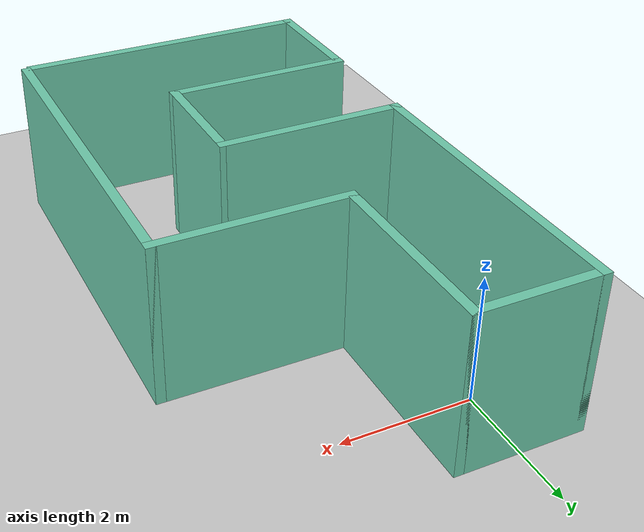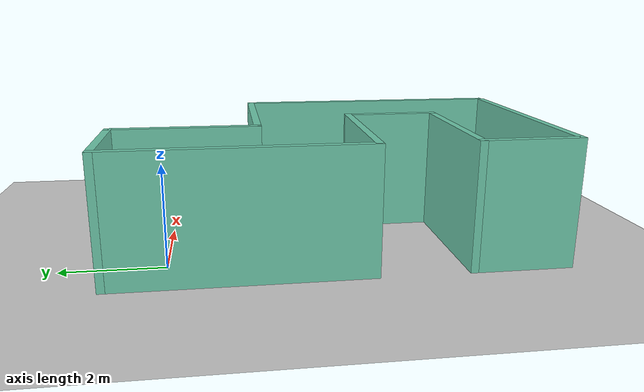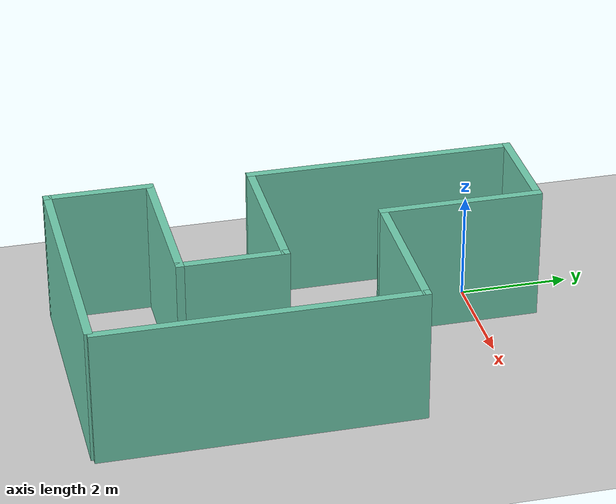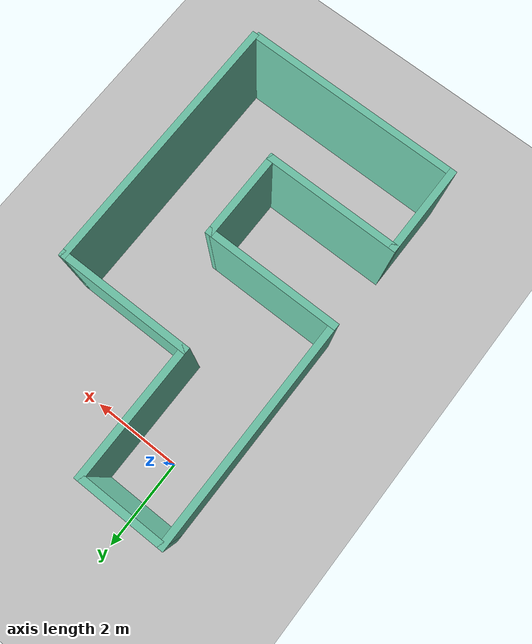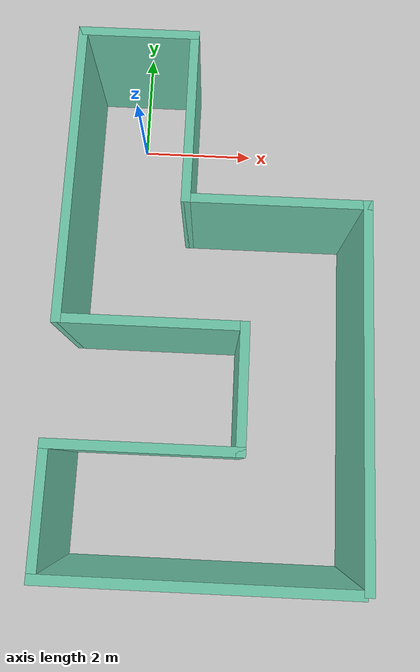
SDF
<sdf version="1.6">
 <world name="default">
  <light name="sun" type="directional">
   <pose>0 0 10 0 -0 0</pose>
   <diffuse>0.8 0.8 0.8 1</diffuse>
   <specular>0.2 0.2 0.2 1</specular>
   <attenuation>
    <range>1000</range>
    <constant>0.9</constant>
    <linear>0.01</linear>
    <quadratic>0.001</quadratic>
   </attenuation>
   <direction>-0.5 0.1 -0.9</direction>
  </light>
  <model name="ground_plane">
   <static>1</static>
   <link name="link">
    <collision name="collision">
     <geometry><plane><normal>0 0 1</normal><size>100 100</size></plane></geometry>
     <surface>
      <contact><collide_bitmask>65535</collide_bitmask></contact>
      <friction><ode><mu>100</mu><mu2>50</mu2></ode></friction>
     </surface>
    </collision>
    <visual name="visual">
     <cast_shadows>0</cast_shadows>
     <geometry><plane><normal>0 0 1</normal><size>100 100</size></plane></geometry>
     <material>
      <script><uri>file://media/materials/scripts/gazebo.material</uri><name>Gazebo/Grey</name></script>
     </material>
    </visual>
   </link>
  </model>
  <gravity>0 0 -9.8</gravity>
  <magnetic_field>6e-06 2.3e-05 -4.2e-05</magnetic_field>
  <atmosphere type="adiabatic"/>
  <physics name="default_physics" default="0" type="ode">
   <max_step_size>0.001</max_step_size>
   <real_time_factor>1</real_time_factor>
   <real_time_update_rate>1000</real_time_update_rate>
  </physics>
  <scene><ambient>0.4 0.4 0.4 1</ambient><background>0.7 0.7 0.7 1</background><shadows>1</shadows></scene>
  <spherical_coordinates>
   <surface_model>EARTH_WGS84</surface_model>
   <latitude_deg>0</latitude_deg>
   <longitude_deg>0</longitude_deg>
   <elevation>0</elevation>
   <heading_deg>0</heading_deg>
  </spherical_coordinates>
  <model name="turtlebot_world">
   <pose>1.42693 -3.22283 0 0 -0 0</pose>
   <link name="Wall_14">
    <collision name="Wall_14_Collision">
     <geometry><box><size>5 0.15 2.5</size></box></geometry>
     <pose>0 0 1.25 0 -0 0</pose>
    </collision>
    <visual name="Wall_14_Visual">
     <pose>0 0 1.25 0 -0 0</pose>
     <geometry><box><size>5 0.15 2.5</size></box></geometry>
     <material>
      <script><uri>file://media/materials/scripts/gazebo.material</uri><name>Gazebo/Grey</name></script>
      <ambient>0.435294 0.796078 0.67451 1</ambient>
     </material>
     <meta><layer>0</layer></meta>
    </visual>
    <pose>-2.35 1.85023 0 0 0 -1.5708</pose>
   </link>
   <link name="Wall_16">
    <collision name="Wall_16_Collision">
     <geometry><box><size>2 0.15 2.5</size></box></geometry>
     <pose>0 0 1.25 0 -0 0</pose>
    </collision>
    <visual name="Wall_16_Visual">
     <pose>0 0 1.25 0 -0 0</pose>
     <geometry><box><size>2 0.15 2.5</size></box></geometry>
     <material>
      <script><uri>file://media/materials/scripts/gazebo.material</uri><name>Gazebo/Grey</name></script>
      <ambient>0.435294 0.796078 0.67451 1</ambient>
     </material>
     <meta><layer>0</layer></meta>
    </visual>
    <pose>-1.425 4.27523 0 0 -0 0</pose>
   </link>
   <link name="Wall_18">
    <collision name="Wall_18_Collision">
     <geometry><box><size>3 0.15 2.5</size></box></geometry>
     <pose>0 0 1.25 0 -0 0</pose>
    </collision>
    <visual name="Wall_18_Visual">
     <pose>0 0 1.25 0 -0 0</pose>
     <geometry><box><size>3 0.15 2.5</size></box></geometry>
     <material>
      <script><uri>file://media/materials/scripts/gazebo.material</uri><name>Gazebo/Grey</name></script>
      <ambient>0.435294 0.796078 0.67451 1</ambient>
     </material>
     <meta><layer>0</layer></meta>
    </visual>
    <pose>-0.5 2.85023 0 0 0 -1.5708</pose>
   </link>
   <link name="Wall_22">
    <collision name="Wall_22_Collision">
     <geometry><box><size>3 0.15 2.5</size></box></geometry>
     <pose>0 0 1.25 0 -0 0</pose>
    </collision>
    <visual name="Wall_22_Visual">
     <pose>0 0 1.25 0 -0 0</pose>
     <geometry><box><size>3 0.15 2.5</size></box></geometry>
     <material>
      <script><uri>file://media/materials/scripts/gazebo.material</uri><name>Gazebo/Grey</name></script>
      <ambient>0.435294 0.796078 0.67451 1</ambient>
     </material>
     <meta><layer>0</layer></meta>
    </visual>
    <pose>-0.9248 -0.575 0 0 0 -0.000164</pose>
   </link>
   <link name="Wall_26">
    <collision name="Wall_26_Collision">
     <geometry><box><size>2 0.15 2.5</size></box></geometry>
     <pose>0 0 1.25 0 -0 0</pose>
    </collision>
    <visual name="Wall_26_Visual">
     <pose>0 0 1.25 0 -0 0</pose>
     <geometry><box><size>2 0.15 2.5</size></box></geometry>
     <material>
      <script><uri>file://media/materials/scripts/gazebo.material</uri><name>Gazebo/Grey</name></script>
      <ambient>0.435294 0.796078 0.67451 1</ambient>
     </material>
     <meta><layer>0</layer></meta>
    </visual>
    <pose>0.500401 -1.50023 0 0 0 -1.5708</pose>
   </link>
   <link name="Wall_28">
    <collision name="Wall_28_Collision">
     <geometry><box><size>3 0.15 2.5</size></box></geometry>
     <pose>0 0 1.25 0 -0 0</pose>
    </collision>
    <visual name="Wall_28_Visual">
     <pose>0 0 1.25 0 -0 0</pose>
     <geometry><box><size>3 0.15 2.5</size></box></geometry>
     <material>
      <script><uri>file://media/materials/scripts/gazebo.material</uri><name>Gazebo/Grey</name></script>
      <ambient>0.435294 0.796078 0.67451 1</ambient>
     </material>
     <meta><layer>0</layer></meta>
    </visual>
    <pose>-0.924599 -2.42523 0 0 -0 3.14159</pose>
   </link>
   <link name="Wall_36">
    <collision name="Wall_36_Collision">
     <geometry><box><size>3 0.15 2.5</size></box></geometry>
     <pose>0 0 1.25 0 -0 0</pose>
    </collision>
    <visual name="Wall_36_Visual">
     <pose>0 0 1.25 0 -0 0</pose>
     <geometry><box><size>3 0.15 2.5</size></box></geometry>
     <material>
      <script><uri>file://media/materials/scripts/gazebo.material</uri><name>Gazebo/Grey</name></script>
      <ambient>0.435294 0.796078 0.67451 1</ambient>
     </material>
     <meta><layer>0</layer></meta>
    </visual>
    <pose>0.925 1.42523 0 0 -0 0</pose>
   </link>
   <link name="Wall_38">
    <collision name="Wall_38_Collision">
     <geometry><box><size>5.8 0.15 2.5</size></box></geometry>
     <pose>0 0 1.25 0 -0 0</pose>
    </collision>
    <visual name="Wall_38_Visual">
     <pose>0 0 1.25 0 -0 0</pose>
     <geometry><box><size>5.8 0.15 2.5</size></box></geometry>
     <material>
      <script><uri>file://media/materials/scripts/gazebo.material</uri><name>Gazebo/Grey</name></script>
      <ambient>0.435294 0.796078 0.67451 1</ambient>
     </material>
     <meta><layer>0</layer></meta>
    </visual>
    <pose>2.35 -1.39977 0 0 0 -1.5708</pose>
   </link>
   <link name="Wall_40">
    <collision name="Wall_40_Collision">
     <geometry><box><size>2 0.15 2.5</size></box></geometry>
     <pose>0 0 1.25 0 -0 0</pose>
    </collision>
    <visual name="Wall_40_Visual">
     <pose>0 0 1.25 0 -0 0</pose>
     <geometry><box><size>2 0.15 2.5</size></box></geometry>
     <material>
      <script><uri>file://media/materials/scripts/gazebo.material</uri><name>Gazebo/Grey</name></script>
      <ambient>0.435294 0.796078 0.67451 1</ambient>
     </material>
     <meta><layer>0</layer></meta>
    </visual>
    <pose>-2.3496 -3.35023 0 0 0 -1.5708</pose>
   </link>
   <link name="Wall_42">
    <collision name="Wall_42_Collision">
     <geometry><box><size>4.75 0.15 2.5</size></box></geometry>
     <pose>0 0 1.25 0 -0 0</pose>
    </collision>
    <visual name="Wall_42_Visual">
     <pose>0 0 1.25 0 -0 0</pose>
     <geometry><box><size>4.75 0.15 2.5</size></box></geometry>
     <material>
      <script><uri>file://media/materials/scripts/gazebo.material</uri><name>Gazebo/Grey</name></script>
      <ambient>0.435294 0.796078 0.67451 1</ambient>
     </material>
     <meta><layer>0</layer></meta>
    </visual>
    <pose>-0.049599 -4.27523 0 0 -0 0</pose>
   </link>
   <static>1</static>
  </model>
 </world>
</sdf>
